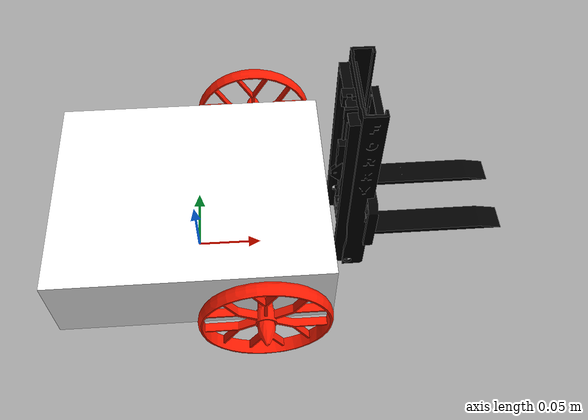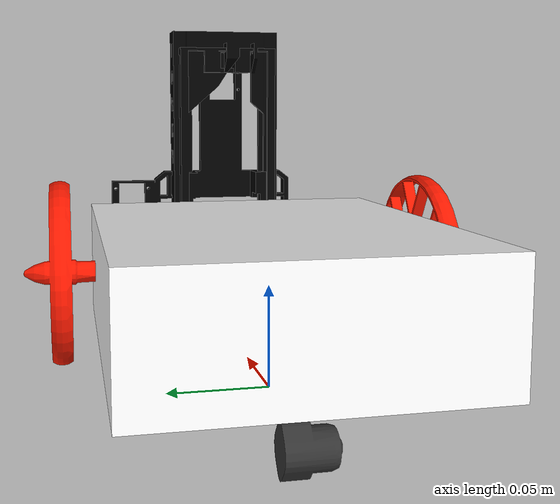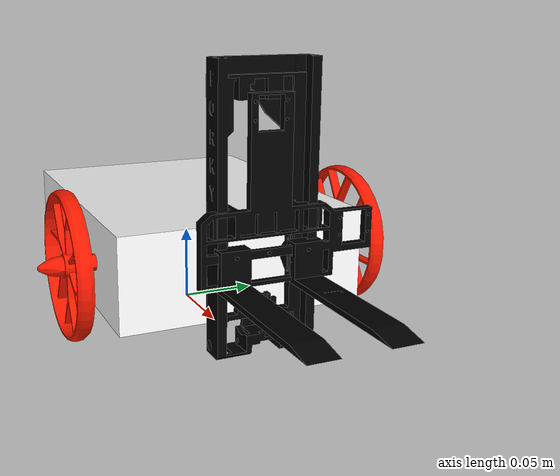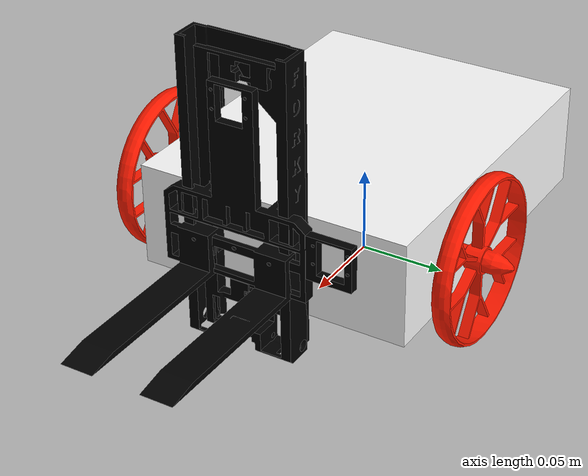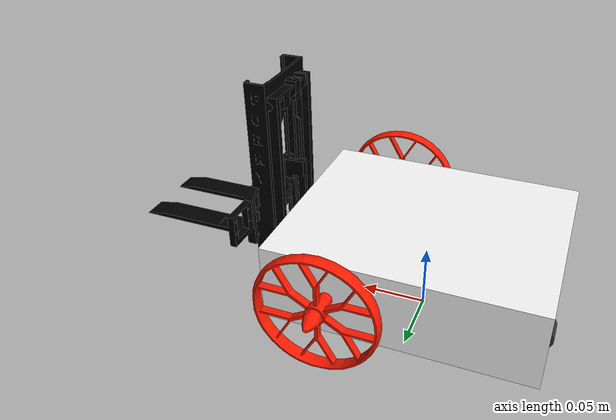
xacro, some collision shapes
<?xml version="1.0"?>
<robot name="puzzlebot" xmlns:xacro="http://www.ros.org/wiki/xacro">

 <xacro:include filename="$(find puzzlebot_description)/urdf/parameters.xacro"/>
  <xacro:include filename="$(find puzzlebot_description)/urdf/materials.xacro"/>
  <xacro:include filename="$(find puzzlebot_description)/urdf/macros.xacro"/>

  <!-- Arguments for using multiple robots if necessary -->
  <xacro:arg name="prefix" default=""/>
  <xacro:property name="prefix" value="$(arg prefix)"/>

  <!--
    base_footprint:reference frame fo assuming the robot is at z=0 (floor) -->
  <link name="${prefix}base_footprint"/>
  <joint name="${prefix}base_footprint_to_base_link" type="fixed">
    <parent link="${prefix}base_footprint"/>
    <child  link="${prefix}base_link"/>
    <!-- the chassis lays on the floor considering wheels radius-->
    <origin xyz="0 0 ${wheel_radius}" rpy="0 0 0"/>
  </joint>

  <link name="${prefix}base_link"/>
  <joint name="${prefix}base_link_to_chassis" type="fixed">
    <parent link="${prefix}base_link"/>
    <child  link="${prefix}chassis_link"/>
    <origin xyz="0 0 0" rpy="0 0 0"/>
  </joint>

  <link name="${prefix}chassis_link">
    <visual>
      <origin xyz="0.04 0 -0.05" rpy="0 0 0"/>
      <geometry>
        <mesh filename="package://puzzlebot_description/meshes/puzzlebot_chassis_detailed.obj"/>
      </geometry>
      <material name="white"/>
    </visual>
    <collision>
      <origin xyz="0 0 0" rpy="0 0 0"/>
      <geometry>
        <box size="${chassis_length} ${chassis_width} ${chassis_height}"/>
      </geometry>
    </collision>
    <inertial>
      <origin xyz="0 0 0" rpy="0 0 0"/>
      <mass value="${chassis_mass}"/>
      <xacro:box_inertia
        m="${chassis_mass}"
        x="${chassis_length}"
        y="${chassis_width}"
        z="${chassis_height}"/>
    </inertial>
  </link>

  <link name="${prefix}caster_wheel_link">
    <visual>
      <origin xyz="0 0 0" rpy="0 0 0"/>
      <geometry>
        <mesh filename="package://puzzlebot_description/meshes/puzzlebot_caster_wheel.obj"/>
      </geometry>
      <material name="dark_grey"/>
    </visual>

    <collision>
      <origin xyz="0 0 0" rpy="0 0 0"/>
      <geometry>
        <sphere radius="${caster_radius}"/>
      </geometry>
    </collision>

    <inertial>
      <origin xyz="0 0 0" rpy="0 0 0"/>
      <mass value="${caster_mass}"/>
      <xacro:sphere_inertia m="${caster_mass}" r="${caster_radius}"/>
    </inertial>

  </link>

  <joint name="${prefix}chassis_to_caster" type="fixed">
    <parent link="${prefix}chassis_link"/>
    <child  link="${prefix}caster_wheel_link"/>
    <origin xyz="${caster_x} ${caster_y} ${caster_z}" rpy="0 0 0"/>
  </joint>

  <!-- Left wheel -->
  <link name="${prefix}left_wheel_link">
    <visual>
      <origin xyz="0 0 -0.046" rpy="0 0 0"/>
      <geometry>
        <mesh filename="package://puzzlebot_description/meshes/puzzlebot_wheel.obj"/>
      </geometry>
      <material name="orange"/>
    </visual>
    <collision>
      <origin xyz="0 0 0" rpy="${PI/2} 0 0"/>
      <geometry>
        <cylinder length="${wheel_thickness}" radius="${wheel_radius}"/>
      </geometry>
    </collision>
    <inertial>
      <origin xyz="0 0 0" rpy="0 0 0"/>
      <mass value="${wheel_mass}"/>
      <xacro:cylinder_inertia
        m="${wheel_mass}"
        r="${wheel_radius}"
        l="${wheel_thickness}"/>
    </inertial>
  </link>
  <joint name="${prefix}base_to_left_wheel" type="continuous">
    <parent link="${prefix}chassis_link"/>
    <child  link="${prefix}left_wheel_link"/>
    <origin xyz="${wheel_x_offset} ${wheel_separation} 0" rpy="0 0 0"/>
    <axis xyz="0 1 0"/>
  </joint>

  <!-- RIGHT WHEEL -->
  <link name="${prefix}right_wheel_link">
    <visual>
      <origin xyz="0 0 -0.046" rpy="0 0 ${PI}"/>
      <geometry>
        <mesh filename="package://puzzlebot_description/meshes/puzzlebot_wheel.obj"/>
      </geometry>
      <material name="orange"/>
    </visual>
    <collision>
      <origin xyz="0 0 0" rpy="${PI/2} 0 0"/>
      <geometry>
        <cylinder length="${wheel_thickness}" radius="${wheel_radius}"/>
      </geometry>
    </collision>
    <inertial>
      <origin xyz="0 0 0" rpy="0 0 0"/>
      <mass value="${wheel_mass}"/>

      <xacro:cylinder_inertia
        m="${wheel_mass}"
        r="${wheel_radius}"
        l="${wheel_thickness}"/>
    </inertial>
  </link>
  <joint name="${prefix}base_to_right_wheel" type="continuous">
    <parent link="${prefix}chassis_link"/>
    <child  link="${prefix}right_wheel_link"/>
    <origin xyz="${wheel_x_offset} -${wheel_separation} 0" rpy="0 0 0"/>
    <axis xyz="0 1 0"/>
  </joint>

  <!-- lidar -->
  <link name="${prefix}laser">
    <collision>
      <origin xyz="${lidar_cx} 0 ${lidar_cz}" rpy="0 0 0"/>
      <geometry>
        <cylinder length="${lidar_length}" radius="${lidar_radius}"/>
      </geometry>
    </collision>
    <inertial>
      <origin xyz="${lidar_cx} 0 ${lidar_cz}" rpy="0 0 0"/>
      <mass value="${lidar_mass}"/>
      <inertia ixx="4.76e-05" ixy="0.0" ixz="0.0" iyy="4.76e-05" iyz="0.0" izz="6.3e-05"/>
    </inertial>
  </link>
  <joint name="${prefix}chassis_to_lidar" type="fixed">
    <parent link="${prefix}chassis_link"/>
    <child  link="${prefix}laser"/>
    <origin xyz="${lidar_x} ${lidar_y} ${lidar_z}" rpy="0 0 ${PI}"/>
  </joint>

  <!-- outer mast: fixed to the chassis -->
  <link name="${prefix}outer_mast_link">
    <visual>
      <origin xyz="${outer_mast_visual_x} 0 0" rpy="0 0 0"/>
      <geometry>
        <mesh filename="package://puzzlebot_description/meshes/outer_mast.obj"/>
      </geometry>
      <material name="black"/>
    </visual>
    <collision>
      <origin xyz="${outer_mast_com}" rpy="0 0 0"/>
      <geometry>
        <box size="${outer_mast_box}"/>
      </geometry>
    </collision>
    <inertial>
      <!-- COM at the centroid of the collision box, not at the link frame -->
      <origin xyz="${outer_mast_com}" rpy="0 0 0"/>
      <mass value="${outer_mast_mass}"/>
      <inertia ixx="2.73e-04" ixy="0.0" ixz="0.0" iyy="2.46e-04" iyz="0.0" izz="3.7e-05"/>
    </inertial>
  </link>
  <joint name="${prefix}outer_mast_joint" type="fixed">
    <parent link="${prefix}chassis_link"/>
    <child  link="${prefix}outer_mast_link"/>
    <origin xyz="${outer_mast_x} ${outer_mast_y} ${outer_mast_z}" rpy="0 0 0"/>
  </joint>

  <!-- inner mast: prismatic stage 2, lifts out of the outer mast -->
  <link name="${prefix}inner_mast_link">
    <visual>
      <origin xyz="0 0 ${inner_mast_visual_z}" rpy="0 0 0"/>
      <geometry>
        <mesh filename="package://puzzlebot_description/meshes/inner_mast.obj"/>
      </geometry>
      <material name="black"/>
    </visual>
    <collision>
      <origin xyz="${inner_mast_com}" rpy="0 0 0"/>
      <geometry>
        <box size="${inner_mast_box}"/>
      </geometry>
    </collision>
    <inertial>
      <origin xyz="${inner_mast_com}" rpy="0 0 0"/>
      <mass value="${inner_mast_mass}"/>
      <inertia ixx="1.916e-04" ixy="0.0" ixz="0.0" iyy="1.716e-04" iyz="0.0" izz="2.19e-05"/>
    </inertial>
  </link>
  <joint name="${prefix}inner_mast_joint" type="prismatic">
    <parent link="${prefix}outer_mast_link"/>
    <child  link="${prefix}inner_mast_link"/>
    <origin xyz="0 0 ${inner_mast_z}" rpy="0 0 0"/>
    <axis xyz="0 0 1"/>
    <limit lower="${inner_lower}" upper="${inner_upper}" effort="10" velocity="0.05"/>
    <dynamics damping="2.0" friction="0.5"/>
  </joint>

  <!-- forks: carriage that slides up the inner mast (stage 1) -->
  <link name="${prefix}forks_link">
    <visual>
      <origin xyz="0 0 0" rpy="0 0 0"/>
      <geometry>
        <mesh filename="package://puzzlebot_description/meshes/forks.obj"/>
      </geometry>
      <material name="black"/>
    </visual>
    <!-- carriage backplate -->
    <collision>
      <origin xyz="${back_origin}" rpy="0 0 0"/>
      <geometry>
        <box size="${back_size}"/>
      </geometry>
    </collision>
    <!-- left tine -->
    <collision>
      <origin xyz="${tine_l_origin}" rpy="0 0 0"/>
      <geometry>
        <box size="${tine_size}"/>
      </geometry>
    </collision>
    <!-- right tine -->
    <collision>
      <origin xyz="${tine_r_origin}" rpy="0 0 0"/>
      <geometry>
        <box size="${tine_size}"/>
      </geometry>
    </collision>
    <inertial>
      <origin xyz="${forks_com}" rpy="0 0 0"/>
      <mass value="${forks_mass}"/>
      <inertia ixx="1.672e-04" ixy="1.712e-05" ixz="3.227e-05" iyy="1.378e-04" iyz="-7.54e-06" izz="2.432e-04"/>
    </inertial>
  </link>
  <joint name="${prefix}forks_joint" type="prismatic">
    <parent link="${prefix}inner_mast_link"/>
    <child  link="${prefix}forks_link"/>
    <origin xyz="0 0 ${forks_z}" rpy="0 0 0"/>
    <axis xyz="0 0 1"/>
    <limit lower="${forks_lower}" upper="${forks_upper}" effort="10" velocity="0.05"/>
    <dynamics damping="2.0" friction="0.5"/>
  </joint>

  <!-- Frame at the front end of the tines. Not in the Isaac URDF (it has no mass or geometry), but
       navigation looks it up (go_to_server, pure_pursuit_fork) so it stays here. -->
  <link name="${prefix}fork_tip_link"/>
  <joint name="${prefix}forks_to_tip" type="fixed">
    <parent link="${prefix}forks_link"/>
    <child  link="${prefix}fork_tip_link"/>
    <origin xyz="${fork_tip_x} 0 ${fork_tip_z}" rpy="0 0 0"/>
  </joint>

  <!-- camera: carried by the forks -->
  <link name="${prefix}camera_link">
    <inertial>
      <origin xyz="0 0 0" rpy="0 0 0"/>
      <mass value="${camera_mass}"/>
      <xacro:box_inertia
        m="${camera_mass}"
        x="${camera_length}"
        y="${camera_width}"
        z="${camera_height}"/>
    </inertial>
  </link>
  <joint name="${prefix}chassis_to_camera" type="fixed">
    <parent link="${prefix}forks_link"/>
    <child  link="${prefix}camera_link"/>
    <origin xyz="${camera_x} ${camera_y} ${camera_z}" rpy="0 0 0"/>
  </joint>

  <!-- optical frame -->
  <link name="${prefix}camera_color_optical_frame">
    <inertial>
      <origin xyz="0 0 0" rpy="0 0 0"/>
      <mass value="${optical_mass}"/>
      <inertia ixx="${optical_inertia}" ixy="0.0" ixz="0.0" iyy="${optical_inertia}" iyz="0.0" izz="${optical_inertia}"/>
    </inertial>
  </link>
  <joint name="${prefix}optical_frame" type="fixed">
    <parent link="${prefix}camera_link"/>
    <child  link="${prefix}camera_color_optical_frame"/>
    <origin xyz="0 0 0" rpy="${-PI/2} 0 ${-PI/2}"/>
  </joint>

</robot>

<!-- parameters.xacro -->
<robot xmlns:xacro="http://www.ros.org/wiki/xacro">

  <xacro:property name="PI" value="3.14159265358979"/>

  <xacro:property name="chassis_length" value="0.20"/>
  <xacro:property name="chassis_width"  value="0.16"/>
  <xacro:property name="chassis_height" value="0.06"/>
  <xacro:property name="chassis_mass"   value="0.710"/>

  <xacro:property name="wheel_radius"    value="0.05"/>
  <xacro:property name="wheel_thickness" value="0.01"/>
  <xacro:property name="wheel_mass"      value="0.03"/>

  <!-- Distancia desde el centro del chassis al centro de cada rueda en Y -->
  <xacro:property name="wheel_separation" value="0.095"/>
  <!-- Offset en X: las ruedas no están centradas, van ligeramente adelante -->
  <xacro:property name="wheel_x_offset"   value="0.05"/>

  <xacro:property name="caster_radius" value="0.0065"/>
  <xacro:property name="caster_mass"   value="0.012"/>
  <!-- Posicionn relativa al chassis atras y abajo -->
  <xacro:property name="caster_x" value="-0.095"/>
  <xacro:property name="caster_y" value="0.0"/>
  <xacro:property name="caster_z" value="-0.0425"/>

  <xacro:property name="camera_mass"   value="0.007"/>
  <xacro:property name="camera_length" value="0.05"/>
  <xacro:property name="camera_width"  value="0.01"/>
  <xacro:property name="camera_height" value="0.06"/>

  <!-- camera pose in forks_link, so it rides up and down with the carriage -->
  <xacro:property name="camera_x" value="0.015"/>
  <xacro:property name="camera_y" value="0.0"/>
  <xacro:property name="camera_z" value="0.1"/>
  <xacro:property name="optical_mass" value="0.0001"/>
  <xacro:property name="optical_inertia" value="1e-9"/>

  <xacro:property name="lidar_mass"   value="0.1"/>
  <xacro:property name="lidar_x"      value="0.03"/>
  <xacro:property name="lidar_y"      value="0.0"/>
  <xacro:property name="lidar_z"      value="0.13"/>
  <!-- sized from the lidar head in the chassis mesh; expressed in the laser frame, which is yawed 180 deg -->
  <xacro:property name="lidar_radius" value="0.0355"/>
  <xacro:property name="lidar_length" value="0.044"/>
  <xacro:property name="lidar_cx"     value="-0.0095"/>
  <xacro:property name="lidar_cz"     value="-0.014"/>

  <!-- outer mast: fixed to the chassis_link -->
  <xacro:property name="outer_mast_x" value="0.12"/>
  <xacro:property name="outer_mast_y" value="0.0"/>
  <!-- mesh bottom sits 0.8 cm above the chassis mesh bottom (z -0.0491 in the chassis frame) -->
  <xacro:property name="outer_mast_z" value="-0.0418"/>
  <xacro:property name="outer_mast_mass" value="0.1"/>
  <xacro:property name="outer_mast_visual_x" value="0.01"/>
  <xacro:property name="outer_mast_box" value="0.025 0.0621 0.1698"/>
  <xacro:property name="outer_mast_com" value="-0.0032 -0.0003 0.0856"/>

  <!-- inner mast: smaller cross section so it nests inside the outer one -->
  <xacro:property name="inner_mast_mass" value="0.08"/>
  <xacro:property name="inner_mast_visual_z" value="0.023"/>
  <xacro:property name="inner_mast_box" value="0.012 0.0561 0.16"/>
  <xacro:property name="inner_mast_com" value="-0.0078 -0.0005 0.1125"/>
  <!-- inner mesh bottom also rests 0.8 cm above the chassis bottom; limits shifted by the same amount so
       the world-frame travel of the stack is unchanged -->
  <xacro:property name="inner_mast_z" value="-0.0318"/>
  <xacro:property name="inner_lower" value="-0.006"/>
  <xacro:property name="inner_upper" value="0.2836"/>

  <!-- forks (carriage). 0.0736 cancels the outer and inner mast drops so the forks keep their height at rest -->
  <xacro:property name="forks_z" value="0.0736"/>
  <xacro:property name="forks_mass" value="0.15"/>
  <xacro:property name="forks_com" value="0.0178 0.0097 0.0196"/>
  <xacro:property name="forks_lower" value="-0.044"/>
  <xacro:property name="forks_upper" value="0.0664"/>
  <xacro:property name="back_origin"  value="0.0056 0.01255 0.025"/>
  <xacro:property name="back_size"    value="0.0112 0.1087 0.0417"/>
  <xacro:property name="tine_l_origin" value="0.0578 0.0231 0.002"/>
  <xacro:property name="tine_r_origin" value="0.0578 -0.0224 0.002"/>
  <xacro:property name="tine_size"    value="0.1053 0.0184 0.004"/>
  <!-- front end of the tines, used as the pallet-engaging frame -->
  <xacro:property name="fork_tip_x" value="0.1105"/>
  <xacro:property name="fork_tip_z" value="0.002"/>

  <xacro:property name="mesh_chassis"
    value="$(find puzzlebot_description)/meshes/puzzlebot_chassis_detailed.obj"/>
  <xacro:property name="mesh_wheel"
    value="$(find puzzlebot_description)/meshes/puzzlebot_wheel.obj"/>
  <xacro:property name="caster_wheel"
    value="$(find puzzlebot_description)/meshes/puzzlebot_caster_wheel.obj"/>
  <xacro:property name="mesh_forks"
    value="$(find puzzlebot_description)/meshes/forks.obj"/>
  <xacro:property name="mesh_outer_mast"
    value="$(find puzzlebot_description)/meshes/outer_mast.obj"/>
  <xacro:property name="mesh_inner_mast"
    value="$(find puzzlebot_description)/meshes/inner_mast.obj"/>

</robot>

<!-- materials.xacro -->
<robot xmlns:xacro="http://www.ros.org/wiki/xacro">

  <!--
      Materials for RVIZ visualization (rgb color only)
  -->

  <material name="black">
    <color rgba="0.0 0.0 0.0 1.0"/>
  </material>

  <material name="dark_grey">
    <color rgba="0.2 0.2 0.2 1.0"/>
  </material>

  <material name="light_grey">
    <color rgba="0.7 0.7 0.7 1.0"/>
  </material>

  <material name="yellow">
    <color rgba="0.95 0.76 0.05 1.0"/>
  </material>

  <material name="white">
    <color rgba="1.0 1.0 1.0 1.0"/>
  </material>

  <material name="red">
    <color rgba="0.80 0.13 0.13 1.0"/>
  </material>

  <material name="blue">
    <color rgba="0.20 0.24 0.29 1.0"/>
  </material>

  <material name="orange">
    <color rgba="1.0 0.1 0.0 1.0"/>
  </material>

</robot>
